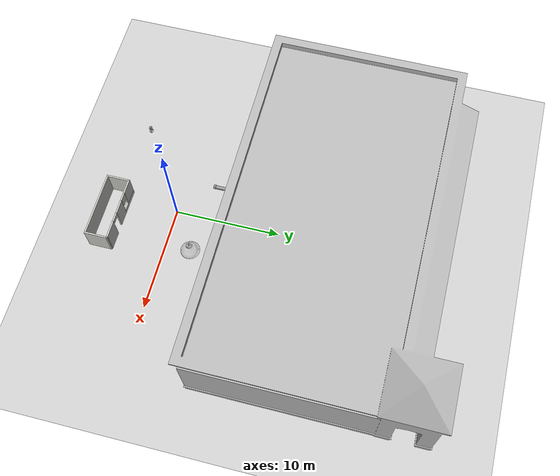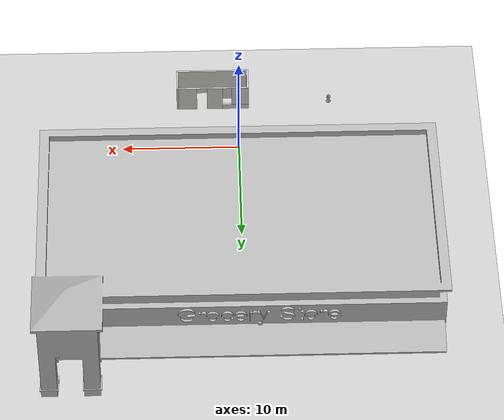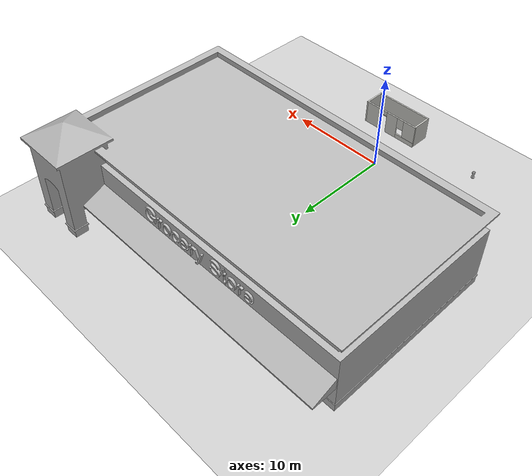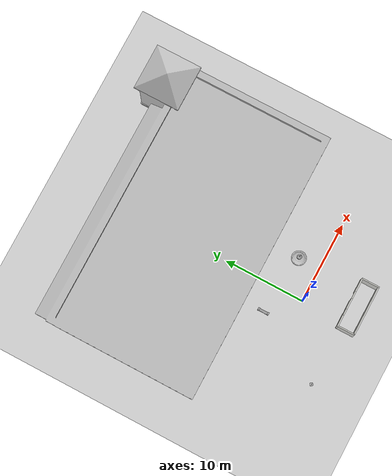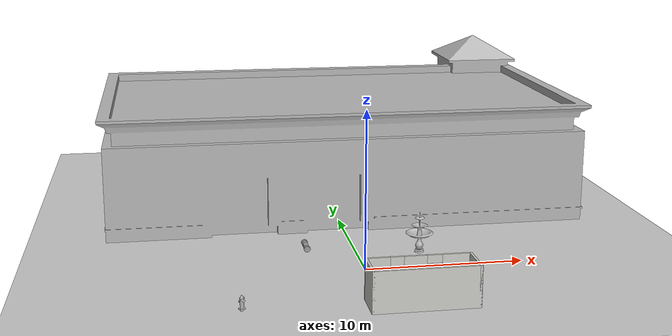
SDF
<sdf version="1.7">
 <world name="nauber">
  <light name="sun" type="directional">
   <pose>0 0 10 0 -0 0</pose>
   <diffuse>0.8 0.8 0.8 1</diffuse>
   <specular>0.2 0.2 0.2 1</specular>
   <attenuation>
    <range>1000</range>
    <constant>0.9</constant>
    <linear>0.01</linear>
    <quadratic>0.001</quadratic>
   </attenuation>
   <direction>-0.5 0.1 -0.9</direction>
   <spot><inner_angle>0</inner_angle><outer_angle>0</outer_angle><falloff>0</falloff></spot>
  </light>
  <model name="ground_plane">
   <static>1</static>
   <link name="link">
    <collision name="collision">
     <geometry><plane><normal>0 0 1</normal><size>100 100</size></plane></geometry>
     <surface>
      <contact><collide_bitmask>65535</collide_bitmask></contact>
      <friction><ode><mu>100</mu><mu2>50</mu2></ode></friction>
     </surface>
    </collision>
    <visual name="visual">
     <cast_shadows>0</cast_shadows>
     <geometry><plane><normal>0 0 1</normal><size>100 100</size></plane></geometry>
     <material>
      <script><uri>file://media/materials/scripts/gazebo.material</uri><name>Gazebo/Grey</name></script>
     </material>
    </visual>
   </link>
  </model>
  <gravity>0 0 -9.8</gravity>
  <magnetic_field>6e-06 2.3e-05 -4.2e-05</magnetic_field>
  <atmosphere type="adiabatic"/>
  <physics type="ode">
   <max_step_size>0.001</max_step_size>
   <real_time_factor>1</real_time_factor>
   <real_time_update_rate>1000</real_time_update_rate>
  </physics>
  <scene><ambient>0.4 0.4 0.4 1</ambient><background>0.7 0.7 0.7 1</background><shadows>1</shadows></scene>
  <spherical_coordinates>
   <surface_model>EARTH_WGS84</surface_model>
   <latitude_deg>0</latitude_deg>
   <longitude_deg>0</longitude_deg>
   <elevation>0</elevation>
   <heading_deg>0</heading_deg>
  </spherical_coordinates>
  <model name="floor">
   <pose>2.14333 -5.17354 0 0 -0 0</pose>
   <link name="Wall_0">
    <collision name="Wall_0_Collision">
     <geometry><box><size>2.25 0.15 2.5</size></box></geometry>
     <pose>0 0 1.25 0 -0 0</pose>
    </collision>
    <visual name="Wall_0_Visual">
     <pose>0 0 1.25 0 -0 0</pose>
     <geometry><box><size>2.25 0.15 2.5</size></box></geometry>
     <material>
      <script><uri>file://media/materials/scripts/gazebo.material</uri><name>Gazebo/CeilingTiled</name></script>
      <ambient>1 1 1 1</ambient>
     </material>
     <meta><layer>0</layer></meta>
    </visual>
    <pose>-3.05 -0.6475 0 0 -0 -1.5708</pose>
   </link>
   <link name="Wall_1">
    <collision name="Wall_1_Collision">
     <geometry><box><size>6.25 0.15 2.5</size></box></geometry>
     <pose>0 0 1.25 0 -0 0</pose>
    </collision>
    <visual name="Wall_1_Visual">
     <pose>0 0 1.25 0 -0 0</pose>
     <geometry><box><size>6.25 0.15 2.5</size></box></geometry>
     <material>
      <script><uri>file://media/materials/scripts/gazebo.material</uri><name>Gazebo/CeilingTiled</name></script>
      <ambient>1 1 1 1</ambient>
     </material>
     <meta><layer>0</layer></meta>
    </visual>
    <pose>0 -1.6975 0 0 -0 0</pose>
   </link>
   <link name="Wall_2">
    <collision name="Wall_2_Collision">
     <geometry><box><size>2.25 0.15 2.5</size></box></geometry>
     <pose>0 0 1.25 0 -0 0</pose>
    </collision>
    <visual name="Wall_2_Visual">
     <pose>0 0 1.25 0 -0 0</pose>
     <geometry><box><size>2.25 0.15 2.5</size></box></geometry>
     <material>
      <script><uri>file://media/materials/scripts/gazebo.material</uri><name>Gazebo/CeilingTiled</name></script>
      <ambient>1 1 1 1</ambient>
     </material>
     <meta><layer>0</layer></meta>
    </visual>
    <pose>3.05 -0.6475 0 0 -0 1.5708</pose>
   </link>
   <link name="Wall_3">
    <pose>0 0.4025 0 0 -0 3.14159</pose>
    <visual name="Wall_3_Visual_0">
     <pose>-2.2525 0 1.25 0 -0 0</pose>
     <geometry><box><size>1.745 0.15 2.5</size></box></geometry>
     <material>
      <script><uri>file://media/materials/scripts/gazebo.material</uri><name>Gazebo/CeilingTiled</name></script>
      <ambient>1 1 1 1</ambient>
     </material>
     <meta><layer>0</layer></meta>
    </visual>
    <collision name="Wall_3_Collision_0">
     <geometry><box><size>1.745 0.15 2.5</size></box></geometry>
     <pose>-2.2525 0 1.25 0 -0 0</pose>
    </collision>
    <visual name="Wall_3_Visual_1">
     <pose>0.19 0 1.25 0 -0 0</pose>
     <geometry><box><size>1.34 0.15 2.5</size></box></geometry>
     <material>
      <script><uri>file://media/materials/scripts/gazebo.material</uri><name>Gazebo/CeilingTiled</name></script>
      <ambient>1 1 1 1</ambient>
     </material>
     <meta><layer>0</layer></meta>
    </visual>
    <collision name="Wall_3_Collision_1">
     <geometry><box><size>1.34 0.15 2.5</size></box></geometry>
     <pose>0.19 0 1.25 0 -0 0</pose>
    </collision>
    <visual name="Wall_3_Visual_2">
     <pose>1.9925 0 0.25 0 -0 0</pose>
     <geometry><box><size>2.265 0.15 0.5</size></box></geometry>
     <material>
      <script><uri>file://media/materials/scripts/gazebo.material</uri><name>Gazebo/CeilingTiled</name></script>
      <ambient>1 1 1 1</ambient>
     </material>
     <meta><layer>0</layer></meta>
    </visual>
    <collision name="Wall_3_Collision_2">
     <geometry><box><size>2.265 0.15 0.5</size></box></geometry>
     <pose>1.9925 0 0.25 0 -0 0</pose>
    </collision>
    <visual name="Wall_3_Visual_3">
     <pose>2.3925 0 1.5 0 -0 0</pose>
     <geometry><box><size>1.465 0.15 2</size></box></geometry>
     <material>
      <script><uri>file://media/materials/scripts/gazebo.material</uri><name>Gazebo/CeilingTiled</name></script>
      <ambient>1 1 1 1</ambient>
     </material>
     <meta><layer>0</layer></meta>
    </visual>
    <collision name="Wall_3_Collision_3">
     <geometry><box><size>1.465 0.15 2</size></box></geometry>
     <pose>2.3925 0 1.5 0 -0 0</pose>
    </collision>
    <visual name="Wall_3_Visual_4">
     <pose>1.26 0 1.9 0 -0 0</pose>
     <geometry><box><size>0.8 0.15 1.2</size></box></geometry>
     <material>
      <script><uri>file://media/materials/scripts/gazebo.material</uri><name>Gazebo/CeilingTiled</name></script>
      <ambient>1 1 1 1</ambient>
     </material>
     <meta><layer>0</layer></meta>
    </visual>
    <collision name="Wall_3_Collision_4">
     <geometry><box><size>0.8 0.15 1.2</size></box></geometry>
     <pose>1.26 0 1.9 0 -0 0</pose>
    </collision>
    <visual name="Wall_3_Visual_5">
     <pose>-0.93 0 2.25 0 -0 0</pose>
     <geometry><box><size>0.9 0.15 0.5</size></box></geometry>
     <material>
      <script><uri>file://media/materials/scripts/gazebo.material</uri><name>Gazebo/CeilingTiled</name></script>
      <ambient>1 1 1 1</ambient>
     </material>
     <meta><layer>0</layer></meta>
    </visual>
    <collision name="Wall_3_Collision_5">
     <geometry><box><size>0.9 0.15 0.5</size></box></geometry>
     <pose>-0.93 0 2.25 0 -0 0</pose>
    </collision>
   </link>
   <static>1</static>
  </model>
  <model name="robot">
   <link name="link_4">
    <inertial>
     <mass>1</mass>
     <inertia>
      <ixx>0.166667</ixx>
      <ixy>0</ixy>
      <ixz>0</ixz>
      <iyy>0.166667</iyy>
      <iyz>0</iyz>
      <izz>0.166667</izz>
     </inertia>
    </inertial>
    <pose>-4.0697 0.6062 0.5 0 -0 0</pose>
    <visual name="visual">
     <geometry><box><size>0.3 1 0.2</size></box></geometry>
     <material>
      <lighting>1</lighting>
      <script><uri>file://media/materials/scripts/gazebo.material</uri><name>Gazebo/Grey</name></script>
      <shader type="pixel"><normal_map>__default__</normal_map></shader>
      <ambient>0.3 0.3 0.3 1</ambient>
      <diffuse>0.7 0.7 0.7 1</diffuse>
      <specular>0.01 0.01 0.01 1</specular>
      <emissive>0 0 0 1</emissive>
     </material>
    </visual>
    <collision name="collision">
     <geometry><box><size>0.3 1 0.2</size></box></geometry>
     <surface>
      <friction>
       <ode><mu>1</mu><mu2>1</mu2><fdir1>0 0 0</fdir1><slip1>0</slip1><slip2>0</slip2></ode>
       <torsional>
        <coefficient>1</coefficient>
        <patch_radius>0</patch_radius>
        <surface_radius>0</surface_radius>
        <use_patch_radius>1</use_patch_radius>
        <ode><slip>0</slip></ode>
       </torsional>
      </friction>
      <bounce><restitution_coefficient>0</restitution_coefficient><threshold>1e+06</threshold></bounce>
      <contact>
       <collide_without_contact>0</collide_without_contact>
       <collide_without_contact_bitmask>1</collide_without_contact_bitmask>
       <collide_bitmask>1</collide_bitmask>
       <ode>
        <soft_cfm>0</soft_cfm>
        <soft_erp>0.2</soft_erp>
        <kp>1e+13</kp>
        <kd>1</kd>
        <max_vel>0.01</max_vel>
        <min_depth>0</min_depth>
       </ode>
       <bullet>
        <split_impulse>1</split_impulse>
        <split_impulse_penetration_threshold>-0.01</split_impulse_penetration_threshold>
        <soft_cfm>0</soft_cfm>
        <soft_erp>0.2</soft_erp>
        <kp>1e+13</kp>
        <kd>1</kd>
       </bullet>
      </contact>
     </surface>
    </collision>
   </link>
   <link name="link_6">
    <inertial>
     <mass>1</mass>
     <inertia><ixx>0.145833</ixx><ixy>0</ixy><ixz>0</ixz><iyy>0.145833</iyy><iyz>0</iyz><izz>0.125</izz></inertia>
    </inertial>
    <pose>-4.0697 0.006041 0.519984 1.57 -0 0</pose>
    <visual name="visual">
     <geometry><cylinder><radius>0.2</radius><length>0.2</length></cylinder></geometry>
     <material>
      <lighting>1</lighting>
      <script><uri>file://media/materials/scripts/gazebo.material</uri><name>Gazebo/Grey</name></script>
      <shader type="pixel"><normal_map>__default__</normal_map></shader>
      <ambient>0.3 0.3 0.3 1</ambient>
      <diffuse>0.7 0.7 0.7 1</diffuse>
      <specular>0.01 0.01 0.01 1</specular>
      <emissive>0 0 0 1</emissive>
     </material>
    </visual>
    <collision name="collision">
     <geometry><cylinder><radius>0.2</radius><length>0.2</length></cylinder></geometry>
     <surface>
      <friction>
       <ode><mu>1</mu><mu2>1</mu2><fdir1>0 0 0</fdir1><slip1>0</slip1><slip2>0</slip2></ode>
       <torsional>
        <coefficient>1</coefficient>
        <patch_radius>0</patch_radius>
        <surface_radius>0</surface_radius>
        <use_patch_radius>1</use_patch_radius>
        <ode><slip>0</slip></ode>
       </torsional>
      </friction>
      <bounce><restitution_coefficient>0</restitution_coefficient><threshold>1e+06</threshold></bounce>
      <contact>
       <collide_without_contact>0</collide_without_contact>
       <collide_without_contact_bitmask>1</collide_without_contact_bitmask>
       <collide_bitmask>1</collide_bitmask>
       <ode>
        <soft_cfm>0</soft_cfm>
        <soft_erp>0.2</soft_erp>
        <kp>1e+13</kp>
        <kd>1</kd>
        <max_vel>0.01</max_vel>
        <min_depth>0</min_depth>
       </ode>
       <bullet>
        <split_impulse>1</split_impulse>
        <split_impulse_penetration_threshold>-0.01</split_impulse_penetration_threshold>
        <soft_cfm>0</soft_cfm>
        <soft_erp>0.2</soft_erp>
        <kp>1e+13</kp>
        <kd>1</kd>
       </bullet>
      </contact>
     </surface>
    </collision>
   </link>
   <link name="link_6_clone">
    <inertial>
     <mass>1</mass>
     <inertia><ixx>0.145833</ixx><ixy>0</ixy><ixz>0</ixz><iyy>0.145833</iyy><iyz>0</iyz><izz>0.125</izz></inertia>
    </inertial>
    <pose>-4.0697 1.20636 0.52 1.57 -0 0</pose>
    <visual name="visual">
     <geometry><cylinder><radius>0.2</radius><length>0.2</length></cylinder></geometry>
     <material>
      <lighting>1</lighting>
      <script><uri>file://media/materials/scripts/gazebo.material</uri><name>Gazebo/Grey</name></script>
      <shader type="pixel"><normal_map>__default__</normal_map></shader>
      <ambient>0.3 0.3 0.3 1</ambient>
      <diffuse>0.7 0.7 0.7 1</diffuse>
      <specular>0.01 0.01 0.01 1</specular>
      <emissive>0 0 0 1</emissive>
     </material>
    </visual>
    <collision name="collision">
     <geometry><cylinder><radius>0.2</radius><length>0.2</length></cylinder></geometry>
     <surface>
      <friction>
       <ode><mu>1</mu><mu2>1</mu2><fdir1>0 0 0</fdir1><slip1>0</slip1><slip2>0</slip2></ode>
       <torsional>
        <coefficient>1</coefficient>
        <patch_radius>0</patch_radius>
        <surface_radius>0</surface_radius>
        <use_patch_radius>1</use_patch_radius>
        <ode><slip>0</slip></ode>
       </torsional>
      </friction>
      <bounce><restitution_coefficient>0</restitution_coefficient><threshold>1e+06</threshold></bounce>
      <contact>
       <collide_without_contact>0</collide_without_contact>
       <collide_without_contact_bitmask>1</collide_without_contact_bitmask>
       <collide_bitmask>1</collide_bitmask>
       <ode>
        <soft_cfm>0</soft_cfm>
        <soft_erp>0.2</soft_erp>
        <kp>1e+13</kp>
        <kd>1</kd>
        <max_vel>0.01</max_vel>
        <min_depth>0</min_depth>
       </ode>
       <bullet>
        <split_impulse>1</split_impulse>
        <split_impulse_penetration_threshold>-0.01</split_impulse_penetration_threshold>
        <soft_cfm>0</soft_cfm>
        <soft_erp>0.2</soft_erp>
        <kp>1e+13</kp>
        <kd>1</kd>
       </bullet>
      </contact>
     </surface>
    </collision>
   </link>
   <model name="grocery_store">
    <static>1</static>
    <link name="link">
     <collision name="collision">
      <pose>0 0 4.04605 0 -0 0</pose>
      <geometry><box><size>32.1985 17.5425 8.09209</size></box></geometry>
     </collision>
     <visual name="visual">
      <pose>0 -1.96155 0 0 -0 0</pose>
      <geometry><mesh><uri>model://grocery_store/meshes/grocery_store.dae</uri></mesh></geometry>
     </visual>
    </link>
    <pose>-0.64581 11.9454 0.513328 0 -0 0</pose>
   </model>
   <joint name="link_4_JOINT_1" type="revolute">
    <parent>link_4</parent>
    <child>link_6</child>
    <axis>
     <xyz>0 0 1</xyz>
     <limit>
      <lower>-1.79769e+308</lower>
      <upper>1.79769e+308</upper>
      <effort>-1</effort>
      <velocity>-1</velocity>
     </limit>
     <dynamics>
      <spring_reference>0</spring_reference>
      <spring_stiffness>0</spring_stiffness>
      <damping>0</damping>
     </dynamics>
    </axis>
    <physics>
     <ode><limit><cfm>0</cfm><erp>0.2</erp></limit><suspension><cfm>0</cfm><erp>0.2</erp></suspension></ode>
    </physics>
   </joint>
   <joint name="link_4_JOINT_2" type="revolute">
    <parent>link_4</parent>
    <child>link_6_clone</child>
    <axis>
     <xyz>0 0 1</xyz>
     <limit>
      <lower>-1.79769e+308</lower>
      <upper>1.79769e+308</upper>
      <effort>-1</effort>
      <velocity>-1</velocity>
     </limit>
     <dynamics>
      <spring_reference>0</spring_reference>
      <spring_stiffness>0</spring_stiffness>
      <damping>0</damping>
     </dynamics>
    </axis>
    <physics>
     <ode><limit><cfm>0</cfm><erp>0.2</erp></limit><suspension><cfm>0</cfm><erp>0.2</erp></suspension></ode>
    </physics>
   </joint>
   <static>0</static>
   <pose>0.855973 2.8348 0 0 -0 0</pose>
  </model>
  <model name="fire_hydrant">
   <static>1</static>
   <link name="link">
    <collision name="collision">
     <geometry><mesh><uri>model://fire_hydrant/meshes/fire_hydrant.dae</uri></mesh></geometry>
    </collision>
    <visual name="visual">
     <geometry><mesh><uri>model://fire_hydrant/meshes/fire_hydrant.dae</uri></mesh></geometry>
    </visual>
   </link>
   <pose>-7.98023 -5.25462 0 0 -0 0</pose>
  </model>
  <model name="fountain">
   <static>1</static>
   <link name="link">
    <collision name="collision">
     <geometry><mesh><uri>model://fountain/meshes/fountain.dae</uri></mesh></geometry>
    </collision>
    <visual name="visual">
     <geometry><mesh><uri>model://fountain/meshes/fountain.dae</uri></mesh></geometry>
    </visual>
   </link>
   <pose>4.05586 2.68653 0 0 -0 0</pose>
  </model>
 </world>
</sdf>
